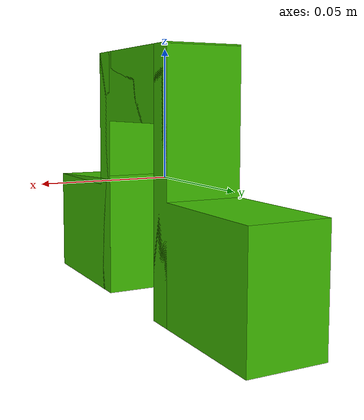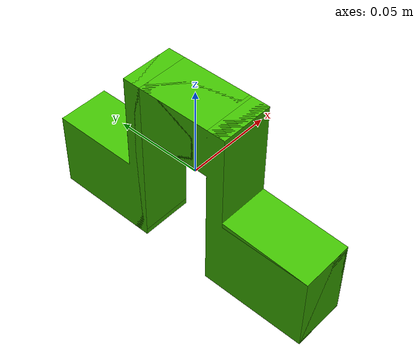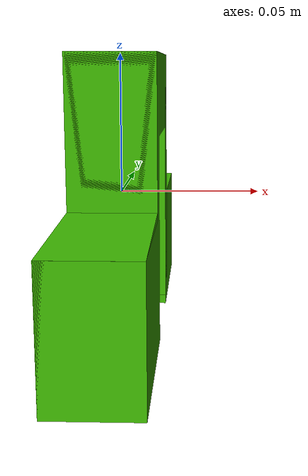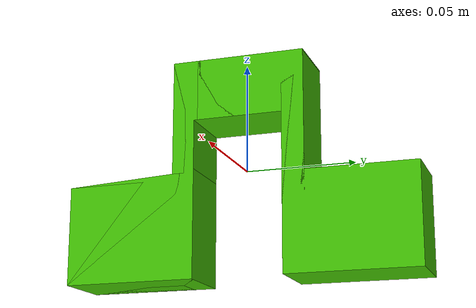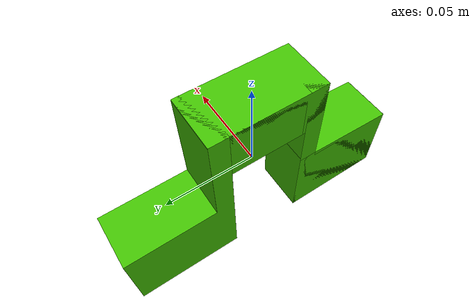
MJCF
<?xml version='1.0' encoding='utf-8'?>
<mujoco model="obj4">
  <asset>
    <mesh name="obj4" file="obj4.obj" scale="0.001 0.001 0.001" />
    <material name="mat4" rgba="0.2549 0.7451 0.00784 1" />
    <mesh name="obj1_p0" file="obj4_part_0.obj" scale="0.001 0.001 0.001" />
    <mesh name="obj1_p1" file="obj4_part_1.obj" scale="0.001 0.001 0.001" />
    <mesh name="obj1_p2" file="obj4_part_2.obj" scale="0.001 0.001 0.001" />
    <mesh name="obj1_p3" file="obj4_part_3.obj" scale="0.001 0.001 0.001" />
    <mesh name="obj1_p4" file="obj4_part_4.obj" scale="0.001 0.001 0.001" />
    <mesh name="obj1_p5" file="obj4_part_5.obj" scale="0.001 0.001 0.001" />
  </asset>
  <worldbody>
    <body>
      <body name="object">
        <inertial pos="0 0 0" mass="0.1" diaginertia="0.0001 0.0001 0.0001" />
        <geom name="visual" mesh="obj4" type="mesh" group="1" contype="0" conaffinity="0" material="mat4" />
        <geom name="col_0" mesh="obj1_p0" type="mesh" group="0" contype="1" conaffinity="1" friction="0.95 0.3 0.1" solimp="0.9 0.95 0.001" solref="0.02 1" condim="4" material="mat4" />
        <geom name="col_1" mesh="obj1_p1" type="mesh" group="0" contype="1" conaffinity="1" friction="0.95 0.3 0.1" solimp="0.9 0.95 0.001" solref="0.02 1" condim="4" material="mat4" />
        <geom name="col_2" mesh="obj1_p2" type="mesh" group="0" contype="1" conaffinity="1" friction="0.95 0.3 0.1" solimp="0.9 0.95 0.001" solref="0.02 1" condim="4" material="mat4" />
        <geom name="col_3" mesh="obj1_p3" type="mesh" group="0" contype="1" conaffinity="1" friction="0.95 0.3 0.1" solimp="0.9 0.95 0.001" solref="0.02 1" condim="4" material="mat4" />
        <geom name="col_4" mesh="obj1_p4" type="mesh" group="0" contype="1" conaffinity="1" friction="0.95 0.3 0.1" solimp="0.9 0.95 0.001" solref="0.02 1" condim="4" material="mat4" />
        <geom name="col_5" mesh="obj1_p5" type="mesh" group="0" contype="1" conaffinity="1" friction="0.95 0.3 0.1" solimp="0.9 0.95 0.001" solref="0.02 1" condim="4" material="mat4" />
      </body>
      <site name="bottom_site" pos="0 0 -0.025" size="0.005" rgba="0 0 0 0" />
      <site name="top_site" pos="0 0 0.025" size="0.005" rgba="0 0 0 0" />
      <site name="horizontal_radius_site" pos="0.03 0.03 0" size="0.005" rgba="0 0 0 0" />
    </body>
  </worldbody>
</mujoco>
